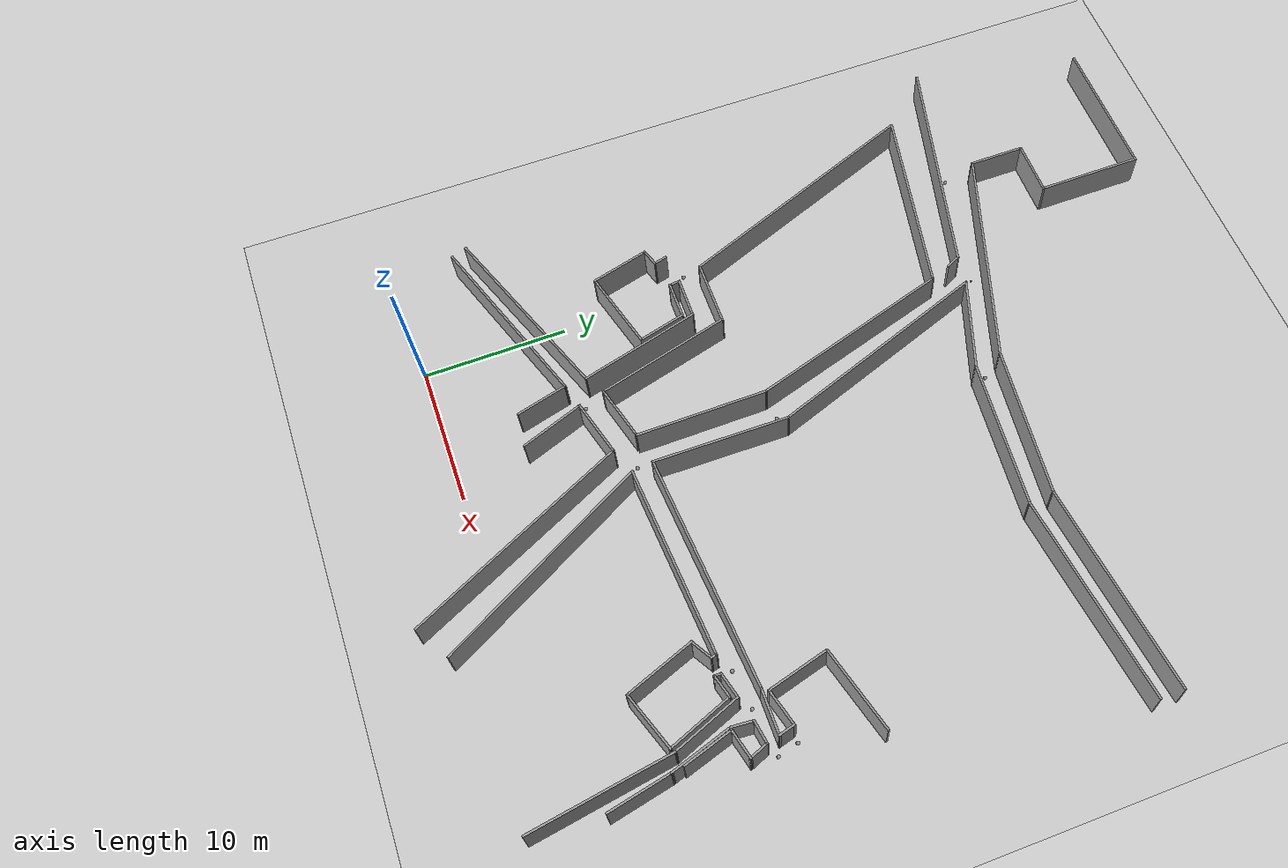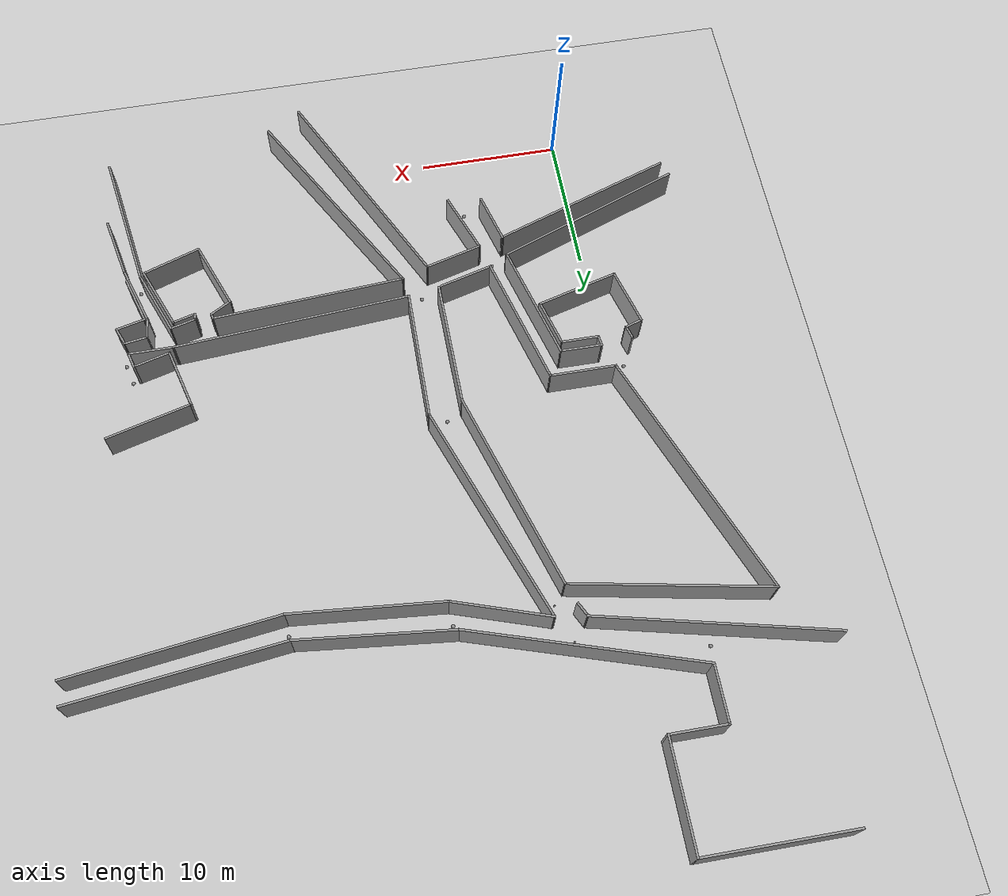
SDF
<sdf version="1.7">
 <world name="default">
  <model name="ground_plane">
   <static>1</static>
   <link name="link">
    <collision name="collision">
     <geometry><plane><normal>0 0 1</normal><size>100 100</size></plane></geometry>
     <surface><friction><ode><mu>100</mu><mu2>50</mu2></ode></friction></surface>
    </collision>
    <visual name="visual">
     <cast_shadows>0</cast_shadows>
     <geometry><plane><normal>0 0 1</normal><size>100 100</size></plane></geometry>
     <material>
      <script><uri>file://media/materials/scripts/gazebo.material</uri><name>Gazebo/Grey</name></script>
     </material>
    </visual>
   </link>
  </model>
  <model name="final_max_v1">
   <pose>-2.5231 0.6891 0 0 -0 0</pose>
   <link name="Wall_115">
    <collision name="Wall_115_Collision">
     <geometry><box><size>10.25 0.15 2.5</size></box></geometry>
     <pose>0 0 1.25 0 -0 0</pose>
    </collision>
    <visual name="Wall_115_Visual">
     <pose>0 0 1.25 0 -0 0</pose>
     <geometry><box><size>10.25 0.15 2.5</size></box></geometry>
     <material>
      <script><uri>file://media/materials/scripts/gazebo.material</uri><name>Gazebo/Grey</name></script>
      <ambient>1 1 1 1</ambient>
     </material>
     <meta><layer>0</layer></meta>
    </visual>
    <pose>-0.269373 52.1014 0 0 -0 0</pose>
   </link>
   <link name="Wall_116">
    <collision name="Wall_116_Collision">
     <geometry><box><size>7.5 0.15 2.5</size></box></geometry>
     <pose>0 0 1.25 0 -0 0</pose>
    </collision>
    <visual name="Wall_116_Visual">
     <pose>0 0 1.25 0 -0 0</pose>
     <geometry><box><size>7.5 0.15 2.5</size></box></geometry>
     <material>
      <script><uri>file://media/materials/scripts/gazebo.material</uri><name>Gazebo/Grey</name></script>
      <ambient>1 1 1 1</ambient>
     </material>
     <meta><layer>0</layer></meta>
    </visual>
    <pose>4.78063 48.4264 0 0 -0 -1.5708</pose>
   </link>
   <link name="Wall_117">
    <collision name="Wall_117_Collision">
     <geometry><box><size>4 0.15 2.5</size></box></geometry>
     <pose>0 0 1.25 0 -0 0</pose>
    </collision>
    <visual name="Wall_117_Visual">
     <pose>0 0 1.25 0 -0 0</pose>
     <geometry><box><size>4 0.15 2.5</size></box></geometry>
     <material>
      <script><uri>file://media/materials/scripts/gazebo.material</uri><name>Gazebo/Grey</name></script>
      <ambient>1 1 1 1</ambient>
     </material>
     <meta><layer>0</layer></meta>
    </visual>
    <pose>2.85563 44.7514 0 0 -0 3.14159</pose>
   </link>
   <link name="Wall_118">
    <collision name="Wall_118_Collision">
     <geometry><box><size>4 0.15 2.5</size></box></geometry>
     <pose>0 0 1.25 0 -0 0</pose>
    </collision>
    <visual name="Wall_118_Visual">
     <pose>0 0 1.25 0 -0 0</pose>
     <geometry><box><size>4 0.15 2.5</size></box></geometry>
     <material>
      <script><uri>file://media/materials/scripts/gazebo.material</uri><name>Gazebo/Grey</name></script>
      <ambient>1 1 1 1</ambient>
     </material>
     <meta><layer>0</layer></meta>
    </visual>
    <pose>0.930627 42.8264 0 0 -0 -1.5708</pose>
   </link>
   <link name="Wall_119">
    <collision name="Wall_119_Collision">
     <geometry><box><size>16.165 0.15 2.5</size></box></geometry>
     <pose>0 0 1.25 0 -0 0</pose>
    </collision>
    <visual name="Wall_119_Visual">
     <pose>0 0 1.25 0 -0 0</pose>
     <geometry><box><size>16.165 0.15 2.5</size></box></geometry>
     <material>
      <script><uri>file://media/materials/scripts/gazebo.material</uri><name>Gazebo/Grey</name></script>
      <ambient>1 1 1 1</ambient>
     </material>
     <meta><layer>0</layer></meta>
    </visual>
    <pose>8.5693 38.4991 0 0 -0 -0.304697</pose>
   </link>
   <link name="Wall_120">
    <collision name="Wall_120_Collision">
     <geometry><box><size>10.7874 0.15 2.5</size></box></geometry>
     <pose>0 0 1.25 0 -0 0</pose>
    </collision>
    <visual name="Wall_120_Visual">
     <pose>0 0 1.25 0 -0 0</pose>
     <geometry><box><size>10.7874 0.15 2.5</size></box></geometry>
     <material>
      <script><uri>file://media/materials/scripts/gazebo.material</uri><name>Gazebo/Grey</name></script>
      <ambient>1 1 1 1</ambient>
     </material>
     <meta><layer>0</layer></meta>
    </visual>
    <pose>21.498 35.5448 0 0 -0 -0.103972</pose>
   </link>
   <link name="Wall_121">
    <collision name="Wall_121_Collision">
     <geometry><box><size>14.8821 0.15 2.5</size></box></geometry>
     <pose>0 0 1.25 0 -0 0</pose>
    </collision>
    <visual name="Wall_121_Visual">
     <pose>0 0 1.25 0 -0 0</pose>
     <geometry><box><size>14.8821 0.15 2.5</size></box></geometry>
     <material>
      <script><uri>file://media/materials/scripts/gazebo.material</uri><name>Gazebo/Grey</name></script>
      <ambient>1 1 1 1</ambient>
     </material>
     <meta><layer>0</layer></meta>
    </visual>
    <pose>34.102 35.8668 0 0 -0 0.118933</pose>
   </link>
   <link name="Wall_159">
    <collision name="Wall_159_Collision">
     <geometry><box><size>16.3963 0.15 2.5</size></box></geometry>
     <pose>0 0 1.25 0 -0 0</pose>
    </collision>
    <visual name="Wall_159_Visual">
     <pose>0 0 1.25 0 -0 0</pose>
     <geometry><box><size>16.3963 0.15 2.5</size></box></geometry>
     <material>
      <script><uri>file://media/materials/scripts/gazebo.material</uri><name>Gazebo/Grey</name></script>
      <ambient>1 1 1 1</ambient>
     </material>
     <meta><layer>0</layer></meta>
    </visual>
    <pose>0.113766 38.435 0 0 -0 -0.228497</pose>
   </link>
   <link name="Wall_164">
    <collision name="Wall_164_Collision">
     <geometry><box><size>9.16316 0.15 2.5</size></box></geometry>
     <pose>0 0 1.25 0 -0 0</pose>
    </collision>
    <visual name="Wall_164_Visual">
     <pose>0 0 1.25 0 -0 0</pose>
     <geometry><box><size>9.16316 0.15 2.5</size></box></geometry>
     <material>
      <script><uri>file://media/materials/scripts/gazebo.material</uri><name>Gazebo/Grey</name></script>
      <ambient>1 1 1 1</ambient>
     </material>
     <meta><layer>0</layer></meta>
    </visual>
    <pose>13.3066 15.8045 0 0 -0 -1.56262</pose>
   </link>
   <link name="Wall_167">
    <collision name="Wall_167_Collision">
     <geometry><box><size>4 0.15 2.5</size></box></geometry>
     <pose>0 0 1.25 0 -0 0</pose>
    </collision>
    <visual name="Wall_167_Visual">
     <pose>0 0 1.25 0 -0 0</pose>
     <geometry><box><size>4 0.15 2.5</size></box></geometry>
     <material>
      <script><uri>file://media/materials/scripts/gazebo.material</uri><name>Gazebo/Grey</name></script>
      <ambient>1 1 1 1</ambient>
     </material>
     <meta><layer>0</layer></meta>
    </visual>
    <pose>11.3094 10.7013 0 0 -0 0.261799</pose>
   </link>
   <link name="Wall_169">
    <collision name="Wall_169_Collision">
     <geometry><box><size>9.75 0.15 2.5</size></box></geometry>
     <pose>0 0 1.25 0 -0 0</pose>
    </collision>
    <visual name="Wall_169_Visual">
     <pose>0 0 1.25 0 -0 0</pose>
     <geometry><box><size>9.75 0.15 2.5</size></box></geometry>
     <material>
      <script><uri>file://media/materials/scripts/gazebo.material</uri><name>Gazebo/Grey</name></script>
      <ambient>1 1 1 1</ambient>
     </material>
     <meta><layer>0</layer></meta>
    </visual>
    <pose>8.20764 14.8395 0 0 -0 1.8326</pose>
   </link>
   <link name="Wall_171">
    <collision name="Wall_171_Collision">
     <geometry><box><size>4.75 0.15 2.5</size></box></geometry>
     <pose>0 0 1.25 0 -0 0</pose>
    </collision>
    <visual name="Wall_171_Visual">
     <pose>0 0 1.25 0 -0 0</pose>
     <geometry><box><size>4.75 0.15 2.5</size></box></geometry>
     <material>
      <script><uri>file://media/materials/scripts/gazebo.material</uri><name>Gazebo/Grey</name></script>
      <ambient>1 1 1 1</ambient>
     </material>
     <meta><layer>0</layer></meta>
    </visual>
    <pose>4.66531 19.476 0 0 -0 3.14159</pose>
   </link>
   <link name="Wall_193">
    <collision name="Wall_193_Collision">
     <geometry><box><size>1.1617 0.15 2.5</size></box></geometry>
     <pose>0 0 1.25 0 -0 0</pose>
    </collision>
    <visual name="Wall_193_Visual">
     <pose>0 0 1.25 0 -0 0</pose>
     <geometry><box><size>1.1617 0.15 2.5</size></box></geometry>
     <material>
      <script><uri>file://media/materials/scripts/gazebo.material</uri><name>Gazebo/Grey</name></script>
      <ambient>1 1 1 1</ambient>
     </material>
     <meta><layer>0</layer></meta>
    </visual>
    <pose>8.25359 36.1433 0 0 -0 2.03799</pose>
   </link>
   <link name="Wall_211">
    <collision name="Wall_211_Collision">
     <geometry><box><size>14.7253 0.15 2.5</size></box></geometry>
     <pose>0 0 1.25 0 -0 0</pose>
    </collision>
    <visual name="Wall_211_Visual">
     <pose>0 0 1.25 0 -0 0</pose>
     <geometry><box><size>14.7253 0.15 2.5</size></box></geometry>
     <material>
      <script><uri>file://media/materials/scripts/gazebo.material</uri><name>Gazebo/Grey</name></script>
      <ambient>1 1 1 1</ambient>
     </material>
     <meta><layer>0</layer></meta>
    </visual>
    <pose>11.1463 27.2824 0 0 -0 -1.27513</pose>
   </link>
   <link name="Wall_213">
    <collision name="Wall_213_Collision">
     <geometry><box><size>9.53445 0.15 2.5</size></box></geometry>
     <pose>0 0 1.25 0 -0 0</pose>
    </collision>
    <visual name="Wall_213_Visual">
     <pose>0 0 1.25 0 -0 0</pose>
     <geometry><box><size>9.53445 0.15 2.5</size></box></geometry>
     <material>
      <script><uri>file://media/materials/scripts/gazebo.material</uri><name>Gazebo/Grey</name></script>
      <ambient>1 1 1 1</ambient>
     </material>
     <meta><layer>0</layer></meta>
    </visual>
    <pose>15.6009 16.3138 0 0 -0 1.56099</pose>
   </link>
   <link name="Wall_215">
    <collision name="Wall_215_Collision">
     <geometry><box><size>16.389 0.15 2.5</size></box></geometry>
     <pose>0 0 1.25 0 -0 0</pose>
    </collision>
    <visual name="Wall_215_Visual">
     <pose>0 0 1.25 0 -0 0</pose>
     <geometry><box><size>16.389 0.15 2.5</size></box></geometry>
     <material>
      <script><uri>file://media/materials/scripts/gazebo.material</uri><name>Gazebo/Grey</name></script>
      <ambient>1 1 1 1</ambient>
     </material>
     <meta><layer>0</layer></meta>
    </visual>
    <pose>12.8869 28.6418 0 0 -0 1.91763</pose>
   </link>
   <link name="Wall_217">
    <collision name="Wall_217_Collision">
     <geometry><box><size>6.92872 0.15 2.5</size></box></geometry>
     <pose>0 0 1.25 0 -0 0</pose>
    </collision>
    <visual name="Wall_217_Visual">
     <pose>0 0 1.25 0 -0 0</pose>
     <geometry><box><size>6.92872 0.15 2.5</size></box></geometry>
     <material>
      <script><uri>file://media/materials/scripts/gazebo.material</uri><name>Gazebo/Grey</name></script>
      <ambient>1 1 1 1</ambient>
     </material>
     <meta><layer>0</layer></meta>
    </visual>
    <pose>13.3469 35.2198 0 0 -0 -0.317459</pose>
   </link>
   <link name="Wall_219">
    <collision name="Wall_219_Collision">
     <geometry><box><size>10.5866 0.15 2.5</size></box></geometry>
     <pose>0 0 1.25 0 -0 0</pose>
    </collision>
    <visual name="Wall_219_Visual">
     <pose>0 0 1.25 0 -0 0</pose>
     <geometry><box><size>10.5866 0.15 2.5</size></box></geometry>
     <material>
      <script><uri>file://media/materials/scripts/gazebo.material</uri><name>Gazebo/Grey</name></script>
      <ambient>1 1 1 1</ambient>
     </material>
     <meta><layer>0</layer></meta>
    </visual>
    <pose>21.7649 33.7018 0 0 -0 -0.088266</pose>
   </link>
   <link name="Wall_221">
    <collision name="Wall_221_Collision">
     <geometry><box><size>14.7107 0.15 2.5</size></box></geometry>
     <pose>0 0 1.25 0 -0 0</pose>
    </collision>
    <visual name="Wall_221_Visual">
     <pose>0 0 1.25 0 -0 0</pose>
     <geometry><box><size>14.7107 0.15 2.5</size></box></geometry>
     <material>
      <script><uri>file://media/materials/scripts/gazebo.material</uri><name>Gazebo/Grey</name></script>
      <ambient>1 1 1 1</ambient>
     </material>
     <meta><layer>0</layer></meta>
    </visual>
    <pose>34.1849 34.1618 0 0 -0 0.126706</pose>
   </link>
   <link name="Wall_234">
    <collision name="Wall_234_Collision">
     <geometry><box><size>10.0086 0.15 2.5</size></box></geometry>
     <pose>0 0 1.25 0 -0 0</pose>
    </collision>
    <visual name="Wall_234_Visual">
     <pose>0 0 1.25 0 -0 0</pose>
     <geometry><box><size>10.0086 0.15 2.5</size></box></geometry>
     <material>
      <script><uri>file://media/materials/scripts/gazebo.material</uri><name>Gazebo/Grey</name></script>
      <ambient>1 1 1 1</ambient>
     </material>
     <meta><layer>0</layer></meta>
    </visual>
    <pose>34.8901 1.94242 0 0 -0 1.72666</pose>
   </link>
   <link name="Wall_235">
    <collision name="Wall_235_Collision">
     <geometry><box><size>5.08472 0.15 2.5</size></box></geometry>
     <pose>0 0 1.25 0 -0 0</pose>
    </collision>
    <visual name="Wall_235_Visual">
     <pose>0 0 1.25 0 -0 0</pose>
     <geometry><box><size>5.08472 0.15 2.5</size></box></geometry>
     <material>
      <script><uri>file://media/materials/scripts/gazebo.material</uri><name>Gazebo/Grey</name></script>
      <ambient>1 1 1 1</ambient>
     </material>
     <meta><layer>0</layer></meta>
    </visual>
    <pose>33.2205 9.10764 0 0 -0 1.94607</pose>
   </link>
   <link name="Wall_237">
    <collision name="Wall_237_Collision">
     <geometry><box><size>16.5284 0.15 2.5</size></box></geometry>
     <pose>0 0 1.25 0 -0 0</pose>
    </collision>
    <visual name="Wall_237_Visual">
     <pose>0 0 1.25 0 -0 0</pose>
     <geometry><box><size>16.5284 0.15 2.5</size></box></geometry>
     <material>
      <script><uri>file://media/materials/scripts/gazebo.material</uri><name>Gazebo/Grey</name></script>
      <ambient>1 1 1 1</ambient>
     </material>
     <meta><layer>0</layer></meta>
    </visual>
    <pose>19.7248 2.9859 0 0 -0 -1.06535</pose>
   </link>
   <link name="Wall_240">
    <collision name="Wall_240_Collision">
     <geometry><box><size>16.9278 0.15 2.5</size></box></geometry>
     <pose>0 0 1.25 0 -0 0</pose>
    </collision>
    <visual name="Wall_240_Visual">
     <pose>0 0 1.25 0 -0 0</pose>
     <geometry><box><size>16.9278 0.15 2.5</size></box></geometry>
     <material>
      <script><uri>file://media/materials/scripts/gazebo.material</uri><name>Gazebo/Grey</name></script>
      <ambient>1 1 1 1</ambient>
     </material>
     <meta><layer>0</layer></meta>
    </visual>
    <pose>23.9191 12.2642 0 0 -0 0.076646</pose>
   </link>
   <link name="Wall_241">
    <collision name="Wall_241_Collision">
     <geometry><box><size>3.25 0.15 2.5</size></box></geometry>
     <pose>0 0 1.25 0 -0 0</pose>
    </collision>
    <visual name="Wall_241_Visual">
     <pose>0 0 1.25 0 -0 0</pose>
     <geometry><box><size>3.25 0.15 2.5</size></box></geometry>
     <material>
      <script><uri>file://media/materials/scripts/gazebo.material</uri><name>Gazebo/Grey</name></script>
      <ambient>1 1 1 1</ambient>
     </material>
     <meta><layer>0</layer></meta>
    </visual>
    <pose>33.8334 12.9065 0 0 -0 0</pose>
   </link>
   <link name="Wall_242">
    <collision name="Wall_242_Collision">
     <geometry><box><size>1.25 0.15 2.5</size></box></geometry>
     <pose>0 0 1.25 0 -0 0</pose>
    </collision>
    <visual name="Wall_242_Visual">
     <pose>0 0 1.25 0 -0 0</pose>
     <geometry><box><size>1.25 0.15 2.5</size></box></geometry>
     <material>
      <script><uri>file://media/materials/scripts/gazebo.material</uri><name>Gazebo/Grey</name></script>
      <ambient>1 1 1 1</ambient>
     </material>
     <meta><layer>0</layer></meta>
    </visual>
    <pose>35.241 13.4378 0 0 -0 1.8326</pose>
   </link>
   <link name="Wall_243">
    <collision name="Wall_243_Collision">
     <geometry><box><size>2.75 0.15 2.5</size></box></geometry>
     <pose>0 0 1.25 0 -0 0</pose>
    </collision>
    <visual name="Wall_243_Visual">
     <pose>0 0 1.25 0 -0 0</pose>
     <geometry><box><size>2.75 0.15 2.5</size></box></geometry>
     <material>
      <script><uri>file://media/materials/scripts/gazebo.material</uri><name>Gazebo/Grey</name></script>
      <ambient>1 1 1 1</ambient>
     </material>
     <meta><layer>0</layer></meta>
    </visual>
    <pose>33.843 13.6326 0 0 -0 -2.87979</pose>
   </link>
   <link name="Wall_244">
    <collision name="Wall_244_Collision">
     <geometry><box><size>4.5 0.15 2.5</size></box></geometry>
     <pose>0 0 1.25 0 -0 0</pose>
    </collision>
    <visual name="Wall_244_Visual">
     <pose>0 0 1.25 0 -0 0</pose>
     <geometry><box><size>4.5 0.15 2.5</size></box></geometry>
     <material>
      <script><uri>file://media/materials/scripts/gazebo.material</uri><name>Gazebo/Grey</name></script>
      <ambient>1 1 1 1</ambient>
     </material>
     <meta><layer>0</layer></meta>
    </visual>
    <pose>32.0243 15.397 0 0 -0 1.8326</pose>
   </link>
   <link name="Wall_245">
    <collision name="Wall_245_Collision">
     <geometry><box><size>6.25 0.15 2.5</size></box></geometry>
     <pose>0 0 1.25 0 -0 0</pose>
    </collision>
    <visual name="Wall_245_Visual">
     <pose>0 0 1.25 0 -0 0</pose>
     <geometry><box><size>6.25 0.15 2.5</size></box></geometry>
     <material>
      <script><uri>file://media/materials/scripts/gazebo.material</uri><name>Gazebo/Grey</name></script>
      <ambient>1 1 1 1</ambient>
     </material>
     <meta><layer>0</layer></meta>
    </visual>
    <pose>34.4075 18.2873 0 0 -0 0.261799</pose>
   </link>
   <link name="Wall_293">
    <collision name="Wall_293_Collision">
     <geometry><box><size>3.61267 0.15 2.5</size></box></geometry>
     <pose>0 0 1.25 0 -0 0</pose>
    </collision>
    <visual name="Wall_293_Visual">
     <pose>0 0 1.25 0 -0 0</pose>
     <geometry><box><size>3.61267 0.15 2.5</size></box></geometry>
     <material>
      <script><uri>file://media/materials/scripts/gazebo.material</uri><name>Gazebo/Grey</name></script>
      <ambient>1 1 1 1</ambient>
     </material>
     <meta><layer>0</layer></meta>
    </visual>
    <pose>34.5878 8.7186 0 0 -0 1.87057</pose>
   </link>
   <link name="Wall_294">
    <collision name="Wall_294_Collision">
     <geometry><box><size>2.19244 0.15 2.5</size></box></geometry>
     <pose>0 0 1.25 0 -0 0</pose>
    </collision>
    <visual name="Wall_294_Visual">
     <pose>0 0 1.25 0 -0 0</pose>
     <geometry><box><size>2.19244 0.15 2.5</size></box></geometry>
     <material>
      <script><uri>file://media/materials/scripts/gazebo.material</uri><name>Gazebo/Grey</name></script>
      <ambient>1 1 1 1</ambient>
     </material>
     <meta><layer>0</layer></meta>
    </visual>
    <pose>35.069 10.6133 0 0 -0 0.237836</pose>
   </link>
   <link name="Wall_295">
    <collision name="Wall_295_Collision">
     <geometry><box><size>1.44567 0.15 2.5</size></box></geometry>
     <pose>0 0 1.25 0 -0 0</pose>
    </collision>
    <visual name="Wall_295_Visual">
     <pose>0 0 1.25 0 -0 0</pose>
     <geometry><box><size>1.44567 0.15 2.5</size></box></geometry>
     <material>
      <script><uri>file://media/materials/scripts/gazebo.material</uri><name>Gazebo/Grey</name></script>
      <ambient>1 1 1 1</ambient>
     </material>
     <meta><layer>0</layer></meta>
    </visual>
    <pose>35.8208 11.4554 0 0 -0 1.9513</pose>
   </link>
   <link name="Wall_296">
    <collision name="Wall_296_Collision">
     <geometry><box><size>1.7323 0.15 2.5</size></box></geometry>
     <pose>0 0 1.25 0 -0 0</pose>
    </collision>
    <visual name="Wall_296_Visual">
     <pose>0 0 1.25 0 -0 0</pose>
     <geometry><box><size>1.7323 0.15 2.5</size></box></geometry>
     <material>
      <script><uri>file://media/materials/scripts/gazebo.material</uri><name>Gazebo/Grey</name></script>
      <ambient>1 1 1 1</ambient>
     </material>
     <meta><layer>0</layer></meta>
    </visual>
    <pose>34.7983 11.9366 0 0 -0 -2.98894</pose>
   </link>
   <link name="Wall_297">
    <collision name="Wall_297_Collision">
     <geometry><box><size>1.5986 0.15 2.5</size></box></geometry>
     <pose>0 0 1.25 0 -0 0</pose>
    </collision>
    <visual name="Wall_297_Visual">
     <pose>0 0 1.25 0 -0 0</pose>
     <geometry><box><size>1.5986 0.15 2.5</size></box></geometry>
     <material>
      <script><uri>file://media/materials/scripts/gazebo.material</uri><name>Gazebo/Grey</name></script>
      <ambient>1 1 1 1</ambient>
     </material>
     <meta><layer>0</layer></meta>
    </visual>
    <pose>33.9562 11.0945 0 0 -0 -1.65394</pose>
   </link>
   <link name="Wall_298">
    <collision name="Wall_298_Collision">
     <geometry><box><size>4.5062 0.15 2.5</size></box></geometry>
     <pose>0 0 1.25 0 -0 0</pose>
    </collision>
    <visual name="Wall_298_Visual">
     <pose>0 0 1.25 0 -0 0</pose>
     <geometry><box><size>4.5062 0.15 2.5</size></box></geometry>
     <material>
      <script><uri>file://media/materials/scripts/gazebo.material</uri><name>Gazebo/Grey</name></script>
      <ambient>1 1 1 1</ambient>
     </material>
     <meta><layer>0</layer></meta>
    </visual>
    <pose>34.5577 8.29755 0 0 -0 -1.26215</pose>
   </link>
   <link name="Wall_318">
    <collision name="Wall_318_Collision">
     <geometry><box><size>4.50017 0.15 2.5</size></box></geometry>
     <pose>0 0 1.25 0 -0 0</pose>
    </collision>
    <visual name="Wall_318_Visual">
     <pose>0 0 1.25 0 -0 0</pose>
     <geometry><box><size>4.50017 0.15 2.5</size></box></geometry>
     <material>
      <script><uri>file://media/materials/scripts/gazebo.material</uri><name>Gazebo/Grey</name></script>
      <ambient>1 1 1 1</ambient>
     </material>
     <meta><layer>0</layer></meta>
    </visual>
    <pose>35.6697 4.09443 0 0 -0 1.77936</pose>
   </link>
   <link name="Wall_372">
    <collision name="Wall_372_Collision">
     <geometry><box><size>14.0321 0.15 2.5</size></box></geometry>
     <pose>0 0 1.25 0 -0 0</pose>
    </collision>
    <visual name="Wall_372_Visual">
     <pose>0 0 1.25 0 -0 0</pose>
     <geometry><box><size>14.0321 0.15 2.5</size></box></geometry>
     <material>
      <script><uri>file://media/materials/scripts/gazebo.material</uri><name>Gazebo/Grey</name></script>
      <ambient>1 1 1 1</ambient>
     </material>
     <meta><layer>0</layer></meta>
    </visual>
    <pose>1.57832 7.01954 0 0 -0 0.351268</pose>
   </link>
   <link name="Wall_374">
    <collision name="Wall_374_Collision">
     <geometry><box><size>8.75 0.15 2.5</size></box></geometry>
     <pose>0 0 1.25 0 -0 0</pose>
    </collision>
    <visual name="Wall_374_Visual">
     <pose>0 0 1.25 0 -0 0</pose>
     <geometry><box><size>8.75 0.15 2.5</size></box></geometry>
     <material>
      <script><uri>file://media/materials/scripts/gazebo.material</uri><name>Gazebo/Grey</name></script>
      <ambient>1 1 1 1</ambient>
     </material>
     <meta><layer>0</layer></meta>
    </visual>
    <pose>6.98261 13.5614 0 0 -0 1.8326</pose>
   </link>
   <link name="Wall_378">
    <collision name="Wall_378_Collision">
     <geometry><box><size>18.7028 0.15 2.5</size></box></geometry>
     <pose>0 0 1.25 0 -0 0</pose>
    </collision>
    <visual name="Wall_378_Visual">
     <pose>0 0 1.25 0 -0 0</pose>
     <geometry><box><size>18.7028 0.15 2.5</size></box></geometry>
     <material>
      <script><uri>file://media/materials/scripts/gazebo.material</uri><name>Gazebo/Grey</name></script>
      <ambient>1 1 1 1</ambient>
     </material>
     <meta><layer>0</layer></meta>
    </visual>
    <pose>-1.00084 28.1201 0 0 -0 1.94215</pose>
   </link>
   <link name="Wall_379">
    <collision name="Wall_379_Collision">
     <geometry><box><size>13.7731 0.15 2.5</size></box></geometry>
     <pose>0 0 1.25 0 -0 0</pose>
    </collision>
    <visual name="Wall_379_Visual">
     <pose>0 0 1.25 0 -0 0</pose>
     <geometry><box><size>13.7731 0.15 2.5</size></box></geometry>
     <material>
      <script><uri>file://media/materials/scripts/gazebo.material</uri><name>Gazebo/Grey</name></script>
      <ambient>1 1 1 1</ambient>
     </material>
     <meta><layer>0</layer></meta>
    </visual>
    <pose>2.32793 35.509 0 0 -0 -0.18533</pose>
   </link>
   <link name="Wall_454">
    <collision name="Wall_454_Collision">
     <geometry><box><size>3.75 0.15 2.5</size></box></geometry>
     <pose>0 0 1.25 0 -0 0</pose>
    </collision>
    <visual name="Wall_454_Visual">
     <pose>0 0 1.25 0 -0 0</pose>
     <geometry><box><size>3.75 0.15 2.5</size></box></geometry>
     <material>
      <script><uri>file://media/materials/scripts/gazebo.material</uri><name>Gazebo/Grey</name></script>
      <ambient>1 1 1 1</ambient>
     </material>
     <meta><layer>0</layer></meta>
    </visual>
    <pose>8.61161 6.18595 0 0 -0 1.8326</pose>
   </link>
   <link name="Wall_455">
    <collision name="Wall_455_Collision">
     <geometry><box><size>13.5834 0.15 2.5</size></box></geometry>
     <pose>0 0 1.25 0 -0 0</pose>
    </collision>
    <visual name="Wall_455_Visual">
     <pose>0 0 1.25 0 -0 0</pose>
     <geometry><box><size>13.5834 0.15 2.5</size></box></geometry>
     <material>
      <script><uri>file://media/materials/scripts/gazebo.material</uri><name>Gazebo/Grey</name></script>
      <ambient>1 1 1 1</ambient>
     </material>
     <meta><layer>0</layer></meta>
    </visual>
    <pose>1.79257 5.74485 0 0 -0 -2.81108</pose>
   </link>
   <link name="Wall_473">
    <collision name="Wall_473_Collision">
     <geometry><box><size>4.25 0.15 2.5</size></box></geometry>
     <pose>0 0 1.25 0 -0 0</pose>
    </collision>
    <visual name="Wall_473_Visual">
     <pose>0 0 1.25 0 -0 0</pose>
     <geometry><box><size>4.25 0.15 2.5</size></box></geometry>
     <material>
      <script><uri>file://media/materials/scripts/gazebo.material</uri><name>Gazebo/Grey</name></script>
      <ambient>1 1 1 1</ambient>
     </material>
     <meta><layer>0</layer></meta>
    </visual>
    <pose>11.8924 8.9301 0 0 -0 0.261799</pose>
   </link>
   <link name="Wall_475">
    <collision name="Wall_475_Collision">
     <geometry><box><size>16.9261 0.15 2.5</size></box></geometry>
     <pose>0 0 1.25 0 -0 0</pose>
    </collision>
    <visual name="Wall_475_Visual">
     <pose>0 0 1.25 0 -0 0</pose>
     <geometry><box><size>16.9261 0.15 2.5</size></box></geometry>
     <material>
      <script><uri>file://media/materials/scripts/gazebo.material</uri><name>Gazebo/Grey</name></script>
      <ambient>1 1 1 1</ambient>
     </material>
     <meta><layer>0</layer></meta>
    </visual>
    <pose>17.5605 1.92686 0 0 -0 -1.11557</pose>
   </link>
   <link name="Wall_608">
    <collision name="Wall_608_Collision">
     <geometry><box><size>4.65169 0.15 2.5</size></box></geometry>
     <pose>0 0 1.25 0 -0 0</pose>
    </collision>
    <visual name="Wall_608_Visual">
     <pose>0 0 1.25 0 -0 0</pose>
     <geometry><box><size>4.65169 0.15 2.5</size></box></geometry>
     <material>
      <script><uri>file://media/materials/scripts/gazebo.material</uri><name>Gazebo/Grey</name></script>
      <ambient>1 1 1 1</ambient>
     </material>
     <meta><layer>0</layer></meta>
    </visual>
    <pose>10.6936 6.28862 0 0 -0 1.92528</pose>
   </link>
   <link name="Wall_612">
    <collision name="Wall_612_Collision">
     <geometry><box><size>3.03133 0.15 2.5</size></box></geometry>
     <pose>0 0 1.25 0 -0 0</pose>
    </collision>
    <visual name="Wall_612_Visual">
     <pose>0 0 1.25 0 -0 0</pose>
     <geometry><box><size>3.03133 0.15 2.5</size></box></geometry>
     <material>
      <script><uri>file://media/materials/scripts/gazebo.material</uri><name>Gazebo/Grey</name></script>
      <ambient>1 1 1 1</ambient>
     </material>
     <meta><layer>0</layer></meta>
    </visual>
    <pose>4.42906 17.7261 0 0 -0 -0.007849</pose>
   </link>
   <link name="Wall_614">
    <collision name="Wall_614_Collision">
     <geometry><box><size>1 0.15 2.5</size></box></geometry>
     <pose>0 0 1.25 0 -0 0</pose>
    </collision>
    <visual name="Wall_614_Visual">
     <pose>0 0 1.25 0 -0 0</pose>
     <geometry><box><size>1 0.15 2.5</size></box></geometry>
     <material>
      <script><uri>file://media/materials/scripts/gazebo.material</uri><name>Gazebo/Grey</name></script>
      <ambient>1 1 1 1</ambient>
     </material>
     <meta><layer>0</layer></meta>
    </visual>
    <pose>0.877987 17.0578 0 0 -0 -1.309</pose>
   </link>
   <link name="Wall_615">
    <collision name="Wall_615_Collision">
     <geometry><box><size>1.37575 0.15 2.5</size></box></geometry>
     <pose>0 0 1.25 0 -0 0</pose>
    </collision>
    <visual name="Wall_615_Visual">
     <pose>0 0 1.25 0 -0 0</pose>
     <geometry><box><size>1.37575 0.15 2.5</size></box></geometry>
     <material>
      <script><uri>file://media/materials/scripts/gazebo.material</uri><name>Gazebo/Grey</name></script>
      <ambient>1 1 1 1</ambient>
     </material>
     <meta><layer>0</layer></meta>
    </visual>
    <pose>0.406981 16.4522 0 0 -0 -2.81769</pose>
   </link>
   <link name="Wall_616">
    <collision name="Wall_616_Collision">
     <geometry><box><size>4.25 0.15 2.5</size></box></geometry>
     <pose>0 0 1.25 0 -0 0</pose>
    </collision>
    <visual name="Wall_616_Visual">
     <pose>0 0 1.25 0 -0 0</pose>
     <geometry><box><size>4.25 0.15 2.5</size></box></geometry>
     <material>
      <script><uri>file://media/materials/scripts/gazebo.material</uri><name>Gazebo/Grey</name></script>
      <ambient>1 1 1 1</ambient>
     </material>
     <meta><layer>0</layer></meta>
    </visual>
    <pose>0.356556 14.277 0 0 -0 -1.309</pose>
   </link>
   <link name="Wall_617">
    <collision name="Wall_617_Collision">
     <geometry><box><size>6 0.15 2.5</size></box></geometry>
     <pose>0 0 1.25 0 -0 0</pose>
    </collision>
    <visual name="Wall_617_Visual">
     <pose>0 0 1.25 0 -0 0</pose>
     <geometry><box><size>6 0.15 2.5</size></box></geometry>
     <material>
      <script><uri>file://media/materials/scripts/gazebo.material</uri><name>Gazebo/Grey</name></script>
      <ambient>1 1 1 1</ambient>
     </material>
     <meta><layer>0</layer></meta>
    </visual>
    <pose>3.71247 13.0539 0 0 -0 0.261799</pose>
   </link>
   <link name="Wall_618">
    <collision name="Wall_618_Collision">
     <geometry><box><size>3.5 0.15 2.5</size></box></geometry>
     <pose>0 0 1.25 0 -0 0</pose>
    </collision>
    <visual name="Wall_618_Visual">
     <pose>0 0 1.25 0 -0 0</pose>
     <geometry><box><size>3.5 0.15 2.5</size></box></geometry>
     <material>
      <script><uri>file://media/materials/scripts/gazebo.material</uri><name>Gazebo/Grey</name></script>
      <ambient>1 1 1 1</ambient>
     </material>
     <meta><layer>0</layer></meta>
    </visual>
    <pose>6.10428 15.4289 0 0 -0 1.8326</pose>
   </link>
   <link name="Wall_619">
    <collision name="Wall_619_Collision">
     <geometry><box><size>2.75 0.15 2.5</size></box></geometry>
     <pose>0 0 1.25 0 -0 0</pose>
    </collision>
    <visual name="Wall_619_Visual">
     <pose>0 0 1.25 0 -0 0</pose>
     <geometry><box><size>2.75 0.15 2.5</size></box></geometry>
     <material>
      <script><uri>file://media/materials/scripts/gazebo.material</uri><name>Gazebo/Grey</name></script>
      <ambient>1 1 1 1</ambient>
     </material>
     <meta><layer>0</layer></meta>
    </visual>
    <pose>4.37076 17.0468 0 0 -0 3.14159</pose>
   </link>
   <link name="Wall_620">
    <collision name="Wall_620_Collision">
     <geometry><box><size>0.845545 0.15 2.5</size></box></geometry>
     <pose>0 0 1.25 0 -0 0</pose>
    </collision>
    <visual name="Wall_620_Visual">
     <pose>0 0 1.25 0 -0 0</pose>
     <geometry><box><size>0.845545 0.15 2.5</size></box></geometry>
     <material>
      <script><uri>file://media/materials/scripts/gazebo.material</uri><name>Gazebo/Grey</name></script>
      <ambient>1 1 1 1</ambient>
     </material>
     <meta><layer>0</layer></meta>
    </visual>
    <pose>3.0296 17.3921 0 0 -0 1.68941</pose>
   </link>
   <link name="Wall_688">
    <collision name="Wall_688_Collision">
     <geometry><box><size>1.94951 0.15 2.5</size></box></geometry>
     <pose>0 0 1.25 0 -0 0</pose>
    </collision>
    <visual name="Wall_688_Visual">
     <pose>0 0 1.25 0 -0 0</pose>
     <geometry><box><size>1.94951 0.15 2.5</size></box></geometry>
     <material>
      <script><uri>file://media/materials/scripts/gazebo.material</uri><name>Gazebo/Grey</name></script>
      <ambient>1 1 1 1</ambient>
     </material>
     <meta><layer>0</layer></meta>
    </visual>
    <pose>31.4453 11.1772 0 0 -0 0.253984</pose>
   </link>
   <link name="Wall_690">
    <collision name="Wall_690_Collision">
     <geometry><box><size>13.758 0.15 2.5</size></box></geometry>
     <pose>0 0 1.25 0 -0 0</pose>
    </collision>
    <visual name="Wall_690_Visual">
     <pose>0 0 1.25 0 -0 0</pose>
     <geometry><box><size>13.758 0.15 2.5</size></box></geometry>
     <material>
      <script><uri>file://media/materials/scripts/gazebo.material</uri><name>Gazebo/Grey</name></script>
      <ambient>1 1 1 1</ambient>
     </material>
     <meta><layer>0</layer></meta>
    </visual>
    <pose>22.5476 10.6175 0 0 -0 0.068598</pose>
   </link>
   <link name="Wall_691">
    <collision name="Wall_691_Collision">
     <geometry><box><size>0.5 0.15 2.5</size></box></geometry>
     <pose>0 0 1.25 0 -0 0</pose>
    </collision>
    <visual name="Wall_691_Visual">
     <pose>0 0 1.25 0 -0 0</pose>
     <geometry><box><size>0.5 0.15 2.5</size></box></geometry>
     <material>
      <script><uri>file://media/materials/scripts/gazebo.material</uri><name>Gazebo/Grey</name></script>
      <ambient>1 1 1 1</ambient>
     </material>
     <meta><layer>0</layer></meta>
    </visual>
    <pose>29.3809 10.9148 0 0 -0 -1.309</pose>
   </link>
   <link name="Wall_692">
    <collision name="Wall_692_Collision">
     <geometry><box><size>1.75 0.15 2.5</size></box></geometry>
     <pose>0 0 1.25 0 -0 0</pose>
    </collision>
    <visual name="Wall_692_Visual">
     <pose>0 0 1.25 0 -0 0</pose>
     <geometry><box><size>1.75 0.15 2.5</size></box></geometry>
     <material>
      <script><uri>file://media/materials/scripts/gazebo.material</uri><name>Gazebo/Grey</name></script>
      <ambient>1 1 1 1</ambient>
     </material>
     <meta><layer>0</layer></meta>
    </visual>
    <pose>28.7334 10.3458 0 0 -0 -2.61799</pose>
   </link>
   <link name="Wall_693">
    <collision name="Wall_693_Collision">
     <geometry><box><size>5.17813 0.15 2.5</size></box></geometry>
     <pose>0 0 1.25 0 -0 0</pose>
    </collision>
    <visual name="Wall_693_Visual">
     <pose>0 0 1.25 0 -0 0</pose>
     <geometry><box><size>5.17813 0.15 2.5</size></box></geometry>
     <material>
      <script><uri>file://media/materials/scripts/gazebo.material</uri><name>Gazebo/Grey</name></script>
      <ambient>1 1 1 1</ambient>
     </material>
     <meta><layer>0</layer></meta>
    </visual>
    <pose>28.9314 7.59485 0 0 -0 -1.20858</pose>
   </link>
   <link name="Wall_694">
    <collision name="Wall_694_Collision">
     <geometry><box><size>4.40322 0.15 2.5</size></box></geometry>
     <pose>0 0 1.25 0 -0 0</pose>
    </collision>
    <visual name="Wall_694_Visual">
     <pose>0 0 1.25 0 -0 0</pose>
     <geometry><box><size>4.40322 0.15 2.5</size></box></geometry>
     <material>
      <script><uri>file://media/materials/scripts/gazebo.material</uri><name>Gazebo/Grey</name></script>
      <ambient>1 1 1 1</ambient>
     </material>
     <meta><layer>0</layer></meta>
    </visual>
    <pose>31.8353 5.92967 0 0 -0 0.328329</pose>
   </link>
   <link name="Wall_695">
    <collision name="Wall_695_Collision">
     <geometry><box><size>4.81643 0.15 2.5</size></box></geometry>
     <pose>0 0 1.25 0 -0 0</pose>
    </collision>
    <visual name="Wall_695_Visual">
     <pose>0 0 1.25 0 -0 0</pose>
     <geometry><box><size>4.81643 0.15 2.5</size></box></geometry>
     <material>
      <script><uri>file://media/materials/scripts/gazebo.material</uri><name>Gazebo/Grey</name></script>
      <ambient>1 1 1 1</ambient>
     </material>
     <meta><layer>0</layer></meta>
    </visual>
    <pose>32.9856 8.78328 0 0 -0 1.94954</pose>
   </link>
   <link name="Wall_696">
    <collision name="Wall_696_Collision">
     <geometry><box><size>1.75 0.15 2.5</size></box></geometry>
     <pose>0 0 1.25 0 -0 0</pose>
    </collision>
    <visual name="Wall_696_Visual">
     <pose>0 0 1.25 0 -0 0</pose>
     <geometry><box><size>1.75 0.15 2.5</size></box></geometry>
     <material>
      <script><uri>file://media/materials/scripts/gazebo.material</uri><name>Gazebo/Grey</name></script>
      <ambient>1 1 1 1</ambient>
     </material>
     <meta><layer>0</layer></meta>
    </visual>
    <pose>31.3501 10.7441 0 0 -0 -2.87979</pose>
   </link>
   <link name="Wall_697">
    <collision name="Wall_697_Collision">
     <geometry><box><size>0.564121 0.15 2.5</size></box></geometry>
     <pose>0 0 1.25 0 -0 0</pose>
    </collision>
    <visual name="Wall_697_Visual">
     <pose>0 0 1.25 0 -0 0</pose>
     <geometry><box><size>0.564121 0.15 2.5</size></box></geometry>
     <material>
      <script><uri>file://media/materials/scripts/gazebo.material</uri><name>Gazebo/Grey</name></script>
      <ambient>1 1 1 1</ambient>
     </material>
     <meta><layer>0</layer></meta>
    </visual>
    <pose>30.5759 10.7441 0 0 -0 1.57801</pose>
   </link>
   <static>1</static>
  </model>
  <model name="id_6">
   <pose>7.17011 35.6116 0.07727 0 -0 0</pose>
   <link name="link">
    <inertial>
     <mass>1</mass>
     <inertia><ixx>0.1</ixx><ixy>0</ixy><ixz>0</ixz><iyy>0.1</iyy><iyz>0</iyz><izz>0.1</izz></inertia>
    </inertial>
    <collision name="collision"><geometry><sphere><radius>0.0772697</radius></sphere></geometry></collision>
    <visual name="visual">
     <geometry><sphere><radius>0.0772697</radius></sphere></geometry>
     <material>
      <script><name>Gazebo/Grey</name><uri>file://media/materials/scripts/gazebo.material</uri></script>
     </material>
    </visual>
   </link>
  </model>
  <model name="id_7">
   <pose>6.34387 38.2099 0.067421 0 -0 0</pose>
   <link name="link">
    <inertial>
     <mass>1</mass>
     <inertia><ixx>0.1</ixx><ixy>0</ixy><ixz>0</ixz><iyy>0.1</iyy><iyz>0</iyz><izz>0.1</izz></inertia>
    </inertial>
    <collision name="collision"><geometry><sphere><radius>0.067421</radius></sphere></geometry></collision>
    <visual name="visual">
     <geometry><sphere><radius>0.067421</radius></sphere></geometry>
     <material>
      <script><name>Gazebo/Grey</name><uri>file://media/materials/scripts/gazebo.material</uri></script>
     </material>
    </visual>
   </link>
  </model>
  <model name="id_8">
   <pose>-2.22317 39.9389 0.128457 0 -0 0</pose>
   <link name="link">
    <inertial>
     <mass>1</mass>
     <inertia><ixx>0.1</ixx><ixy>0</ixy><ixz>0</ixz><iyy>0.1</iyy><iyz>0</iyz><izz>0.1</izz></inertia>
    </inertial>
    <collision name="collision"><geometry><sphere><radius>0.128457</radius></sphere></geometry></collision>
    <visual name="visual">
     <geometry><sphere><radius>0.128457</radius></sphere></geometry>
     <material>
      <script><name>Gazebo/Grey</name><uri>file://media/materials/scripts/gazebo.material</uri></script>
     </material>
    </visual>
   </link>
  </model>
  <model name="id_15">
   <pose>-1.20928 19.1909 0.128457 0 -0 0</pose>
   <link name="link">
    <inertial>
     <mass>1</mass>
     <inertia><ixx>0.1</ixx><ixy>0</ixy><ixz>0</ixz><iyy>0.1</iyy><iyz>0</iyz><izz>0.1</izz></inertia>
    </inertial>
    <collision name="collision"><geometry><sphere><radius>0.128457</radius></sphere></geometry></collision>
    <visual name="visual">
     <geometry><sphere><radius>0.128457</radius></sphere></geometry>
     <material>
      <script><name>Gazebo/Grey</name><uri>file://media/materials/scripts/gazebo.material</uri></script>
     </material>
    </visual>
   </link>
  </model>
  <model name="id_16">
   <pose>3.83506 19.2693 0.128457 0 -0 0</pose>
   <link name="link">
    <inertial>
     <mass>1</mass>
     <inertia><ixx>0.1</ixx><ixy>0</ixy><ixz>0</ixz><iyy>0.1</iyy><iyz>0</iyz><izz>0.1</izz></inertia>
    </inertial>
    <collision name="collision"><geometry><sphere><radius>0.128457</radius></sphere></geometry></collision>
    <visual name="visual">
     <geometry><sphere><radius>0.128457</radius></sphere></geometry>
     <material>
      <script><name>Gazebo/Grey</name><uri>file://media/materials/scripts/gazebo.material</uri></script>
     </material>
    </visual>
   </link>
  </model>
  <model name="id_17">
   <pose>6.48599 9.50995 0.128457 0 -0 0</pose>
   <link name="link">
    <inertial>
     <mass>1</mass>
     <inertia><ixx>0.1</ixx><ixy>0</ixy><ixz>0</ixz><iyy>0.1</iyy><iyz>0</iyz><izz>0.1</izz></inertia>
    </inertial>
    <collision name="collision"><geometry><sphere><radius>0.128457</radius></sphere></geometry></collision>
    <visual name="visual">
     <geometry><sphere><radius>0.128457</radius></sphere></geometry>
     <material>
      <script><name>Gazebo/Grey</name><uri>file://media/materials/scripts/gazebo.material</uri></script>
     </material>
    </visual>
   </link>
  </model>
  <model name="id_18">
   <pose>11.9824 11.4028 0.128457 0 -0 0</pose>
   <link name="link">
    <inertial>
     <mass>1</mass>
     <inertia><ixx>0.1</ixx><ixy>0</ixy><ixz>0</ixz><iyy>0.1</iyy><iyz>0</iyz><izz>0.1</izz></inertia>
    </inertial>
    <collision name="collision"><geometry><sphere><radius>0.128457</radius></sphere></geometry></collision>
    <visual name="visual">
     <geometry><sphere><radius>0.128457</radius></sphere></geometry>
     <material>
      <script><name>Gazebo/Grey</name><uri>file://media/materials/scripts/gazebo.material</uri></script>
     </material>
    </visual>
   </link>
  </model>
  <model name="id_19">
   <pose>11.811 21.3584 0.128457 0 -0 0</pose>
   <link name="link">
    <inertial>
     <mass>1</mass>
     <inertia><ixx>0.1</ixx><ixy>0</ixy><ixz>0</ixz><iyy>0.1</iyy><iyz>0</iyz><izz>0.1</izz></inertia>
    </inertial>
    <collision name="collision"><geometry><sphere><radius>0.128457</radius></sphere></geometry></collision>
    <visual name="visual">
     <geometry><sphere><radius>0.128457</radius></sphere></geometry>
     <material>
      <script><name>Gazebo/Grey</name><uri>file://media/materials/scripts/gazebo.material</uri></script>
     </material>
    </visual>
   </link>
  </model>
  <model name="id_35">
   <pose>33.4448 13.3163 0.128457 0 -0 0</pose>
   <link name="link">
    <inertial>
     <mass>1</mass>
     <inertia><ixx>0.1</ixx><ixy>0</ixy><ixz>0</ixz><iyy>0.1</iyy><iyz>0</iyz><izz>0.1</izz></inertia>
    </inertial>
    <collision name="collision"><geometry><sphere><radius>0.128457</radius></sphere></geometry></collision>
    <visual name="visual">
     <geometry><sphere><radius>0.128457</radius></sphere></geometry>
     <material>
      <script><name>Gazebo/Grey</name><uri>file://media/materials/scripts/gazebo.material</uri></script>
     </material>
    </visual>
   </link>
  </model>
  <model name="id_37">
   <pose>33.0767 14.7132 0.128457 0 -0 0</pose>
   <link name="link">
    <inertial>
     <mass>1</mass>
     <inertia><ixx>0.1</ixx><ixy>0</ixy><ixz>0</ixz><iyy>0.1</iyy><iyz>0</iyz><izz>0.1</izz></inertia>
    </inertial>
    <collision name="collision"><geometry><sphere><radius>0.128457</radius></sphere></geometry></collision>
    <visual name="visual">
     <geometry><sphere><radius>0.128457</radius></sphere></geometry>
     <material>
      <script><name>Gazebo/Grey</name><uri>file://media/materials/scripts/gazebo.material</uri></script>
     </material>
    </visual>
   </link>
  </model>
  <model name="id_38">
   <pose>30.1158 12.844 0.128457 0 -0 0</pose>
   <link name="link">
    <inertial>
     <mass>1</mass>
     <inertia><ixx>0.1</ixx><ixy>0</ixy><ixz>0</ixz><iyy>0.1</iyy><iyz>0</iyz><izz>0.1</izz></inertia>
    </inertial>
    <collision name="collision"><geometry><sphere><radius>0.128457</radius></sphere></geometry></collision>
    <visual name="visual">
     <geometry><sphere><radius>0.128457</radius></sphere></geometry>
     <material>
      <script><name>Gazebo/Grey</name><uri>file://media/materials/scripts/gazebo.material</uri></script>
     </material>
    </visual>
   </link>
  </model>
  <model name="id_39">
   <pose>32.0054 7.52633 0.128457 0 -0 0</pose>
   <link name="link">
    <inertial>
     <mass>1</mass>
     <inertia><ixx>0.1</ixx><ixy>0</ixy><ixz>0</ixz><iyy>0.1</iyy><iyz>0</iyz><izz>0.1</izz></inertia>
    </inertial>
    <collision name="collision"><geometry><sphere><radius>0.128457</radius></sphere></geometry></collision>
    <visual name="visual">
     <geometry><sphere><radius>0.128457</radius></sphere></geometry>
     <material>
      <script><name>Gazebo/Grey</name><uri>file://media/materials/scripts/gazebo.material</uri></script>
     </material>
    </visual>
   </link>
  </model>
  <model name="id_40">
   <pose>27.4062 12.5261 0.128457 0 -0 0</pose>
   <link name="link">
    <inertial>
     <mass>1</mass>
     <inertia><ixx>0.1</ixx><ixy>0</ixy><ixz>0</ixz><iyy>0.1</iyy><iyz>0</iyz><izz>0.1</izz></inertia>
    </inertial>
    <collision name="collision"><geometry><sphere><radius>0.128457</radius></sphere></geometry></collision>
    <visual name="visual">
     <geometry><sphere><radius>0.128457</radius></sphere></geometry>
     <material>
      <script><name>Gazebo/Grey</name><uri>file://media/materials/scripts/gazebo.material</uri></script>
     </material>
    </visual>
   </link>
  </model>
  <model name="id_49">
   <pose>7.74139 4.89069 0.128457 0 -0 0</pose>
   <link name="link">
    <inertial>
     <mass>1</mass>
     <inertia><ixx>0.1</ixx><ixy>0</ixy><ixz>0</ixz><iyy>0.1</iyy><iyz>0</iyz><izz>0.1</izz></inertia>
    </inertial>
    <collision name="collision"><geometry><sphere><radius>0.128457</radius></sphere></geometry></collision>
    <visual name="visual">
     <geometry><sphere><radius>0.128457</radius></sphere></geometry>
     <material>
      <script><name>Gazebo/Grey</name><uri>file://media/materials/scripts/gazebo.material</uri></script>
     </material>
    </visual>
   </link>
  </model>
  <model name="id_95">
   <pose>24.506 34.7545 0.128457 0 -0 0</pose>
   <link name="link">
    <inertial>
     <mass>1</mass>
     <inertia><ixx>0.1</ixx><ixy>0</ixy><ixz>0</ixz><iyy>0.1</iyy><iyz>0</iyz><izz>0.1</izz></inertia>
    </inertial>
    <collision name="collision"><geometry><sphere><radius>0.128457</radius></sphere></geometry></collision>
    <visual name="visual">
     <geometry><sphere><radius>0.128457</radius></sphere></geometry>
     <material>
      <script><name>Gazebo/Grey</name><uri>file://media/materials/scripts/gazebo.material</uri></script>
     </material>
    </visual>
   </link>
  </model>
  <model name="id_96">
   <pose>13.9273 35.8591 0.128457 0 -0 0</pose>
   <link name="link">
    <inertial>
     <mass>1</mass>
     <inertia><ixx>0.1</ixx><ixy>0</ixy><ixz>0</ixz><iyy>0.1</iyy><iyz>0</iyz><izz>0.1</izz></inertia>
    </inertial>
    <collision name="collision"><geometry><sphere><radius>0.128457</radius></sphere></geometry></collision>
    <visual name="visual">
     <geometry><sphere><radius>0.128457</radius></sphere></geometry>
     <material>
      <script><name>Gazebo/Grey</name><uri>file://media/materials/scripts/gazebo.material</uri></script>
     </material>
    </visual>
   </link>
  </model>
 </world>
</sdf>
